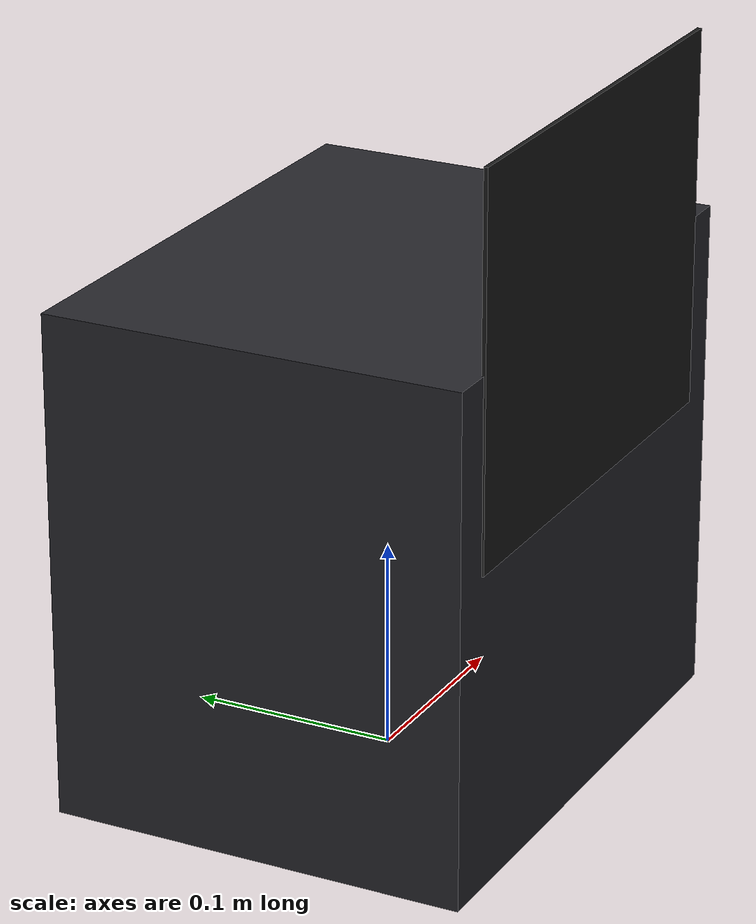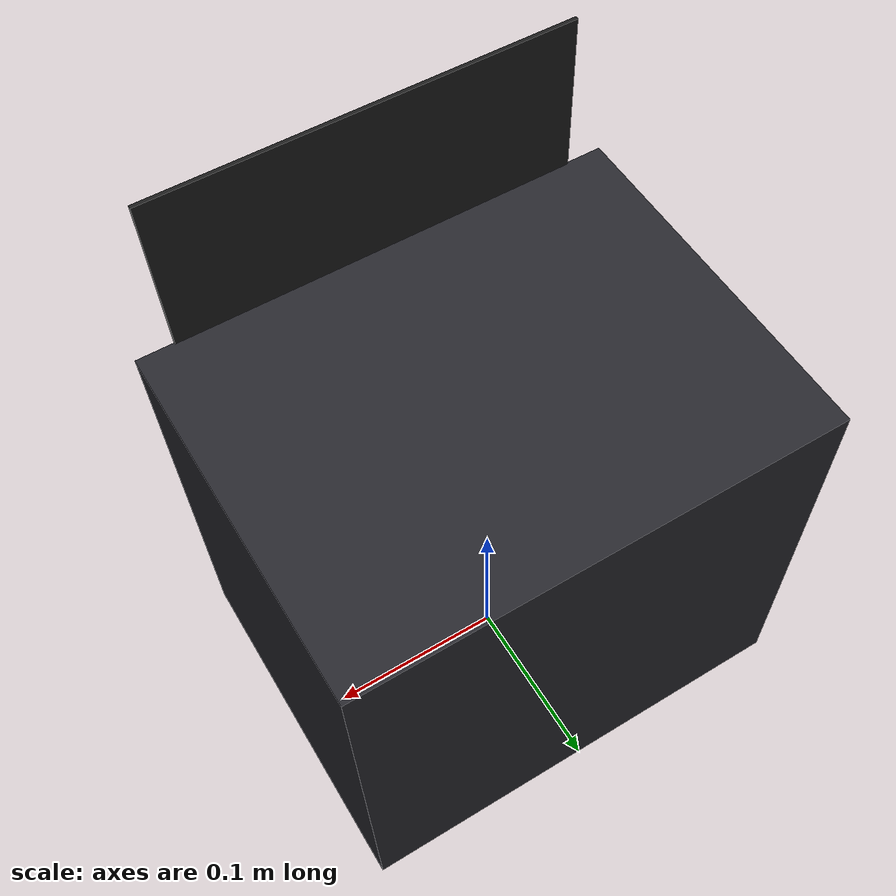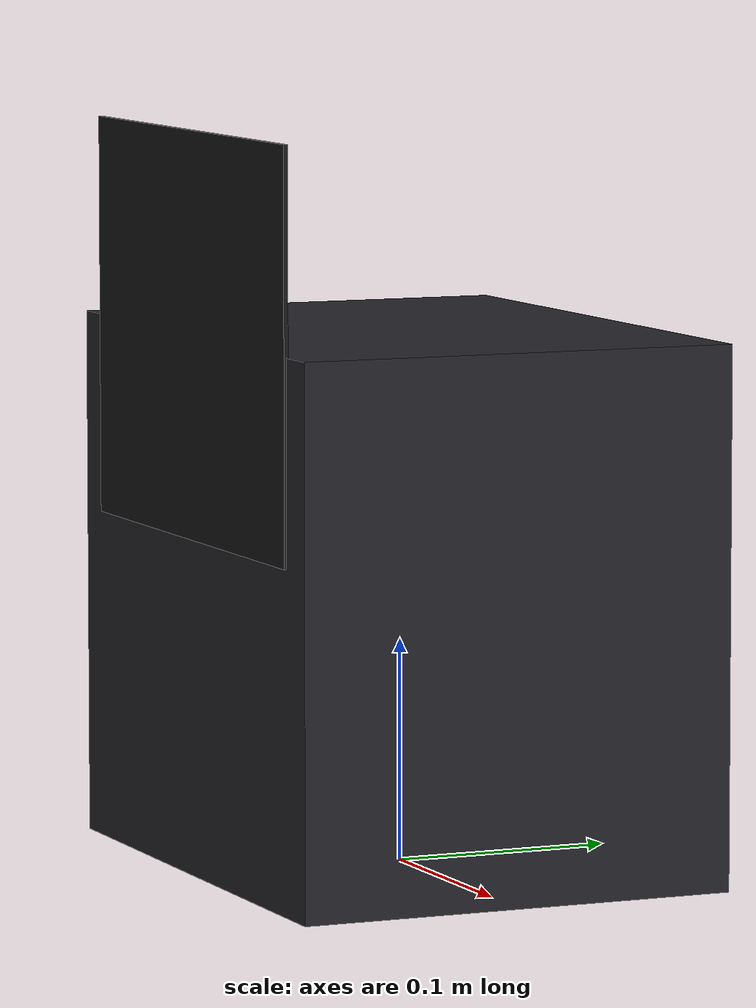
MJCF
<?xml version="1.0" encoding="utf-8"?>
<mujoco model="battery_cycler_rack">
  <compiler angle="radian" autolimits="true"/>
  <default>
    <default class="body"><geom contype="1" conaffinity="1"/></default>
  </default>
  <worldbody>
    <body name="base">
      <geom type="box" size="0.13 0.1 0.12" pos="0 0 0.12" rgba="0.15 0.15 0.17 1" class="body"/>
      <geom type="box" size="0.039 0.005000000000000001 0.03" pos="-0.065 -0.09000000000000001 0.18" rgba="0.1 0.9 0.3 1" class="body"/>
      <body name="channel_panel" pos="0 -0.10 0.15">
        <joint name="channel_panel_joint" type="hinge" axis="1 0 0" range="0 1.4" damping="0.6" frictionloss="0.5"/>
  <geom type="box" size="0.11 0.001 0.09" pos="0 0 0.09" rgba="0.1 0.1 0.1 1" class="body"/>
      </body>
    </body>
  </worldbody>
</mujoco>
